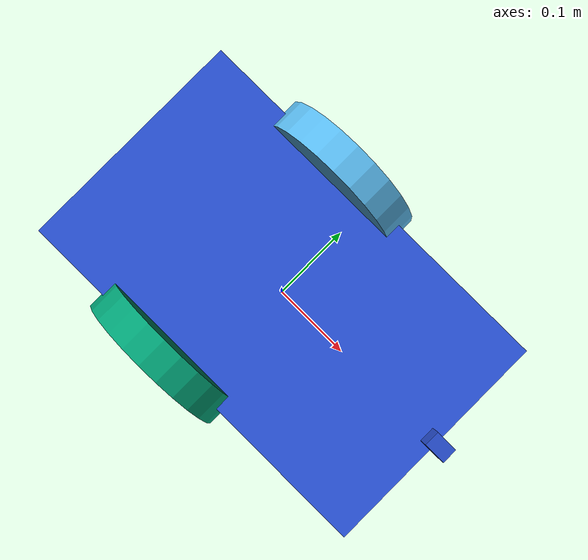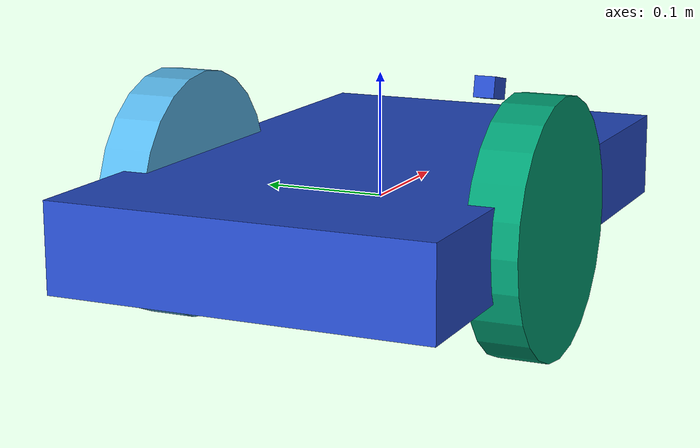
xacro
<?xml version="1.0" ?>

<robot name="m2wr" xmlns:xacro="https://www.ros.org/wiki/xacro" >
  <link name="link_chassis">
    <!-- pose and inertial -->
    <pose>0 0 0 0 0 0</pose>

    <inertial>
      <mass value="5"/>
      <origin rpy="0 0 0" xyz="0 0 0"/>
      <inertia ixx="0.0395416666667" ixy="0" ixz="0" iyy="0.106208333333" iyz="0" izz="0.1416666667"/>
    </inertial>

    <collision name="collision_chassis">
      <geometry>
        <box size="0.5 0.3 0.07"/>
      </geometry>
    </collision>

    <visual>
      <origin rpy="0 0 0" xyz="0 0 0"/>
      <geometry>
        <box size="0.5 0.3 0.07"/>
      </geometry>
      <material name="blue"/>
    </visual>

    <!-- caster front -->
    <collision name="caster_front_collision">
      <origin rpy=" 0 0 0" xyz="0.35 0 -0.05"/>
      <geometry>
        <sphere radius="0.05"/>
      </geometry>
      <surface>
        <friction>
          <ode>
            <mu>0</mu>
            <mu2>0</mu2>
            <slip1>1.0</slip1>
            <slip2>1.0</slip2>
          </ode>
        </friction>
      </surface>
    </collision>
    <visual name="caster_front_visual">
      <origin rpy=" 0 0 0" xyz="0.2 0 -0.05"/>
      <geometry>
        <sphere radius="0.05"/>
      </geometry>
    </visual>
    </link>

  <!-- Create wheel right -->

  <link name="link_right_wheel">
    <inertial>
      <mass value="0.2"/>
      <origin rpy="0 1.5707 1.5707" xyz="0 0 0"/>
      <inertia ixx="0.00052666666" ixy="0" ixz="0" iyy="0.00052666666" iyz="0" izz="0.001"/>
    </inertial>

    <collision name="link_right_wheel_collision">
      <origin rpy="0 1.5707 1.5707" xyz="0 0 0" />
      <geometry>
        <cylinder length="0.04" radius="0.1"/>
      </geometry>
    </collision>

    <visual name="link_right_wheel_visual">
      <origin rpy="0 1.5707 1.5707" xyz="0 0 0"/>
      <geometry>
        <cylinder length="0.04" radius="0.1"/>
      </geometry>
    </visual>

  </link>

  <!--   Joint for right wheel  -->
  <joint name="joint_right_wheel" type="continuous">
    <origin rpy="0 0 0" xyz="-0.05 0.15 0"/>
    <child link="link_right_wheel" />
    <parent link="link_chassis"/>
    <axis rpy="0 0 0" xyz="0 1 0"/>
    <limit effort="10000" velocity="1000"/>
    <joint_properties damping="1.0" friction="1.0" />
  </joint>

  <!-- Left Wheel link -->

  <link name="link_left_wheel">
    <inertial>
      <mass value="0.2"/>
      <origin rpy="0 1.5707 1.5707" xyz="0 0 0"/>
      <inertia ixx="0.00052666666" ixy="0" ixz="0" iyy="0.00052666666" iyz="0" izz="0.001"/>
    </inertial>

    <collision name="link_left_wheel_collision">
      <origin rpy="0 1.5707 1.5707" xyz="0 0 0" />
      <geometry>
        <cylinder length="0.04" radius="0.1"/>
      </geometry>
    </collision>

    <visual name="link_left_wheel_visual">
      <origin rpy="0 1.5707 1.5707" xyz="0 0 0"/>
      <geometry>
        <cylinder length="0.04" radius="0.1"/>
      </geometry>
    </visual>

  </link>

  <!--   Joint for right wheel  -->
  <joint name="joint_left_wheel" type="continuous">
    <origin rpy="0 0 0" xyz="-0.05 -0.15 0"/>
    <child link="link_left_wheel" />
    <parent link="link_chassis"/>
    <axis rpy="0 0 0" xyz="0 1 0"/>
    <limit effort="10000" velocity="1000"/>
    <joint_properties damping="1.0" friction="1.0" />
  </joint>

<!--    IMU     -->
  <joint name="imu_joint" type="fixed">
    <parent link="link_chassis"/>
    <child link="imu_link"/>
    <origin xyz="-0.1 0.1 0.1" rpy="0 0 0"/>
  </joint>

  <link name="imu_link">
    </link>

<gazebo>
    <plugin name="imu_plugin" filename="libgazebo_ros_imu.so">
      <alwaysOn>true</alwaysOn>
      <bodyName>imu_link</bodyName>
      <frameName>imu_link</frameName>
      <topicName>imu</topicName>
      <serviceName>imu_service</serviceName>
      <gaussianNoise>0.0</gaussianNoise>
      <updateRate>10</updateRate>
      <imu>
        <noise>
          <type>gaussian</type>
          <rate>
            <mean>0.0</mean>
            <stddev>2e-4</stddev>
            <bias_mean>0.0000075</bias_mean>
            <bias_stddev>0.0000008</bias_stddev>
          </rate>
          <accel>
            <mean>0.0</mean>
            <stddev>1.7e-2</stddev>
            <bias_mean>0.1</bias_mean>
            <bias_stddev>0.001</bias_stddev>
          </accel>
        </noise>
      </imu>
    </plugin>
  </gazebo>

  <gazebo reference="imu_link">
    <sensor type="imu" name="imu">
      <always_on>true</always_on>
      <visualize>false</visualize>
    </sensor>
    <material>Gazebo/Grey</material>
  </gazebo>

    <link name='camera_link'>
      <visual name='visual_camera'>
        <origin rpy="0 0 0" xyz="0 0 0"/>
        <geometry>
          <box size="0.03 0.02 0.02"/>
        </geometry>
        <material name="blue"/>
      </visual>
    </link>

    <joint name="camera_joint" type="fixed">
        <axis xyz="1 0 0" />
        <origin xyz="0.25 0 0.05" rpy="0 0.2 0" />
        <parent link="link_chassis"/>
        <child link="camera_link"/>
    </joint>

    <gazebo reference="camera_link">
        <sensor type="camera" name="camera">
          <update_rate>30.0</update_rate>
          <camera name="camera1">
            <horizontal_fov>1.3962634</horizontal_fov>
            <image>
              <width>640</width>
              <height>480</height>
              <format>B8G8R8</format>
            </image>
            <clip>
              <near>0.02</near>
              <far>300</far>
            </clip>
            <noise>
              <type>gaussian</type>
              <mean>0.0</mean>
              <stddev>0.000</stddev>
            </noise>
          </camera>
          <plugin name="camera_controller" filename="libgazebo_ros_camera.so">
            <alwaysOn>true</alwaysOn>
            <updateRate>30.0</updateRate>
            <cameraName>vivebot/camera</cameraName>
            <imageTopicName>image_raw</imageTopicName>
            <cameraInfoTopicName>camera_info</cameraInfoTopicName>
            <frameName>camera_link</frameName>
            <hackBaseline>0.07</hackBaseline>
            <distortionK1>0.0</distortionK1>
            <distortionK2>0.0</distortionK2>
            <distortionK3>0.0</distortionK3>
            <distortionT1>0.0</distortionT1>
            <distortionT2>0.0</distortionT2>
          </plugin>
        </sensor>
    </gazebo>

  <gazebo>
    <plugin filename="libgazebo_ros_diff_drive.so" name="differential_drive_controller">
      <alwaysOn>true</alwaysOn>
      <updateRate>20</updateRate>
      <leftJoint>joint_left_wheel</leftJoint>
      <rightJoint>joint_right_wheel</rightJoint>
      <wheelSeparation>0.4</wheelSeparation>
      <wheelDiameter>0.2</wheelDiameter>
      <torque>0.1</torque>
      <commandTopic>cmd_vel</commandTopic>
      <odometryTopic>odom</odometryTopic>
      <odometryFrame>odom</odometryFrame>
      <robotBaseFrame>link_chassis</robotBaseFrame>
    </plugin>
  </gazebo>

</robot>
